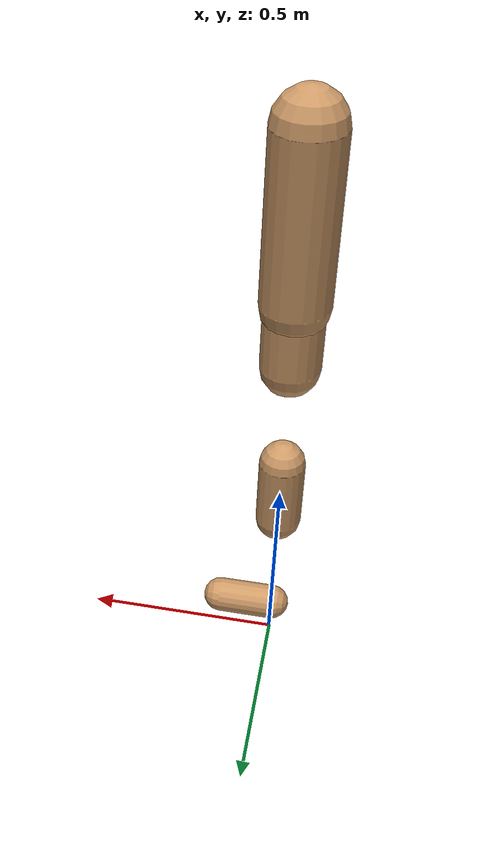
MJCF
<mujoco model="walker2d">
  <compiler angle="degree" coordinate="global" inertiafromgeom="true" />
  <default>
    <joint armature="0.01" damping=".1" limited="true" />
    <geom conaffinity="0" condim="3" contype="1" density="1000" friction="0.8 .1 .1" rgba="0.8 0.6 .4 1" />
  </default>
  <option integrator="RK4" timestep="0.002" />
  <worldbody>

    <body name="torso" pos="0 0 -0.6066291278796148">
      <joint armature="0" axis="1 0 0" damping="0" limited="false" name="ignorex" pos="0 0 0" stiffness="0" type="slide" />
      <joint armature="0" axis="0 0 1" damping="0" limited="false" name="ignorez" pos="0 0 0" ref="1.25" stiffness="0" type="slide" />
      <joint armature="0" axis="0 1 0" damping="0" limited="false" name="ignorey" pos="0 0 0" stiffness="0" type="hinge" />
      <geom fromto="0 0 1.45 0 0 1.05" name="torso_geom" size="0.08179916804967777" type="capsule" />
      <body name="thigh">
        <joint axis="0 -1 0" name="thigh_joint" pos="0 0 1.05" range="-150 0" type="hinge" />
        <geom fromto="0.0 0.0 1.05 0.0 0.0 0.8873506395219228" name="thigh_geom" size="0.07149572051464707" type="capsule" />
        <body name="leg" pos="0.0 0.0 0.28735063952192286">
          <joint axis="0 -1 0" name="leg_joint" pos="0 0 0.6" range="-150 0" type="hinge" />
          <geom fromto="0.0 0.0 0.6 0.0 0.0 0.419278488357692" name="leg_geom" size="0.05719657641171766" type="capsule" />
          <body name="foot" pos="0.0 0.0 0.319278488357692">
            <joint axis="0 -1 0" name="foot_joint" pos="0 0 0.1" range="-45 45" type="hinge" />
            <geom fromto="0.0 0.0 0.1 0.14065815347235897 0.0 0.1" name="foot_geom" size="0.04601908930814829" type="capsule" />
          </body>
        </body>
      </body>

      <body name="thigh_left">
        <joint axis="0 -1 0" name="thigh_left_joint" pos="0 0 1.05" range="-150 0" type="hinge" />
        <geom fromto="0.0 0.0 1.05 0.0 0.0 0.8873506395219228" name="thigh_left_geom" rgba=".7 .3 .6 1" size="0.07149572051464707" type="capsule" />
        <body name="leg_left" pos="0.0 0.0 0.28735063952192286">
          <joint axis="0 -1 0" name="leg_left_joint" pos="0 0 0.6" range="-150 0" type="hinge" />
          <geom fromto="0.0 0.0 0.6 0.0 0.0 0.419278488357692" name="leg_left_geom" rgba=".7 .3 .6 1" size="0.05719657641171766" type="capsule" />
          <body name="foot_left" pos="0.0 0.0 0.319278488357692">
            <joint axis="0 -1 0" name="foot_left_joint" pos="0 0 0.1" range="-45 45" type="hinge" />
            <geom fromto="0.0 0.0 0.1 0.14065815347235897 0.0 0.1" name="foot_left_geom" rgba=".7 .3 .6 1" size="0.04601908930814829" type="capsule" />
          </body>
        </body>
      </body>
    </body>
  </worldbody>
  <actuator>

    <motor ctrllimited="true" ctrlrange="-1.0 1.0" gear="100" joint="thigh_joint" />
    <motor ctrllimited="true" ctrlrange="-1.0 1.0" gear="100" joint="leg_joint" />
    <motor ctrllimited="true" ctrlrange="-1.0 1.0" gear="100" joint="foot_joint" />
    <motor ctrllimited="true" ctrlrange="-1.0 1.0" gear="100" joint="thigh_left_joint" />
    <motor ctrllimited="true" ctrlrange="-1.0 1.0" gear="100" joint="leg_left_joint" />
    <motor ctrllimited="true" ctrlrange="-1.0 1.0" gear="100" joint="foot_left_joint" />

  </actuator>
</mujoco>
